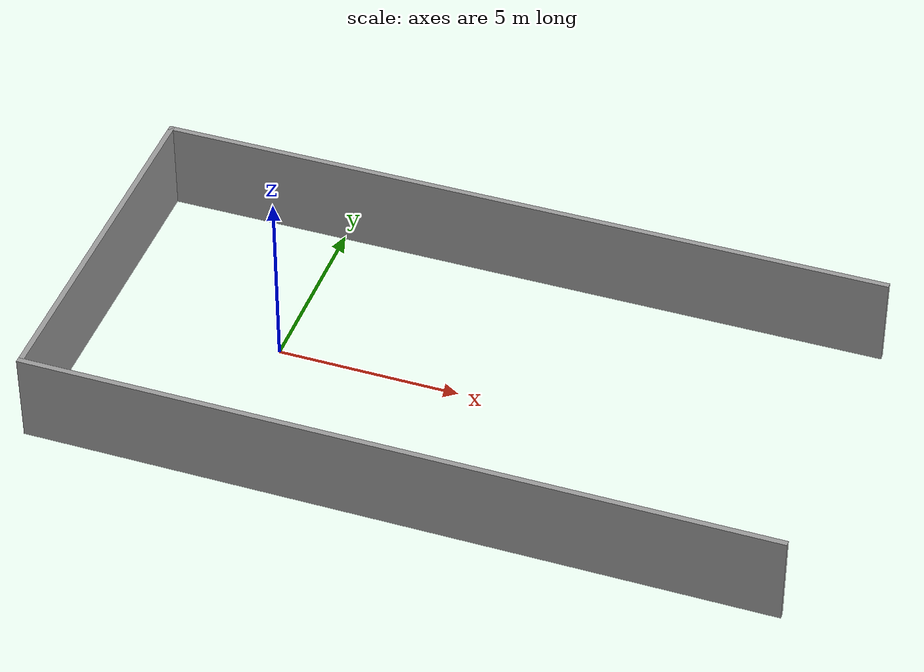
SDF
<?xml version='1.0'?>
<sdf version='1.6'>
  <model name='part_end'>
    <pose frame=''>5 0 0 0 -0 0</pose>
    <link name='Wall_2'>
      <collision name='Wall_2_Collision'>
        <geometry>
          <box>
            <size>20.15 0.15 2.5</size>
          </box>
        </geometry>
        <pose frame=''>0 0 1.25 0 -0 0</pose>
      </collision>
      <visual name='Wall_2_Visual'>
        <pose frame=''>0 0 1.25 0 -0 0</pose>
        <geometry>
          <box>
            <size>20.15 0.15 2.5</size>
          </box>
        </geometry>
        <material>
          <script>
            <uri>file://media/materials/scripts/gazebo.material</uri>
            <name>Gazebo/Grey</name>
          </script>
          <ambient>1 1 1 1</ambient>
        </material>
      </visual>
      <pose frame=''>0 -5 0 0 -0 0</pose>
    </link>
    <link name='Wall_6'>
      <collision name='Wall_6_Collision'>
        <geometry>
          <box>
            <size>10.15 0.15 2.5</size>
          </box>
        </geometry>
        <pose frame=''>0 0 1.25 0 -0 0</pose>
      </collision>
      <visual name='Wall_6_Visual'>
        <pose frame=''>0 0 1.25 0 -0 0</pose>
        <geometry>
          <box>
            <size>10.15 0.15 2.5</size>
          </box>
        </geometry>
        <material>
          <script>
            <uri>file://media/materials/scripts/gazebo.material</uri>
            <name>Gazebo/Grey</name>
          </script>
          <ambient>1 1 1 1</ambient>
        </material>
      </visual>
      <pose frame=''>-10 0 0 0 -0 1.5708</pose>
    </link>
    <link name='Wall_8'>
      <collision name='Wall_8_Collision'>
        <geometry>
          <box>
            <size>20.15 0.15 2.5</size>
          </box>
        </geometry>
        <pose frame=''>0 0 1.25 0 -0 0</pose>
      </collision>
      <visual name='Wall_8_Visual'>
        <pose frame=''>0 0 1.25 0 -0 0</pose>
        <geometry>
          <box>
            <size>20.15 0.15 2.5</size>
          </box>
        </geometry>
        <material>
          <script>
            <uri>file://media/materials/scripts/gazebo.material</uri>
            <name>Gazebo/Grey</name>
          </script>
          <ambient>1 1 1 1</ambient>
        </material>
      </visual>
      <pose frame=''>0 5 0 0 -0 0</pose>
    </link>
    <static>1</static>
  </model>
</sdf>
